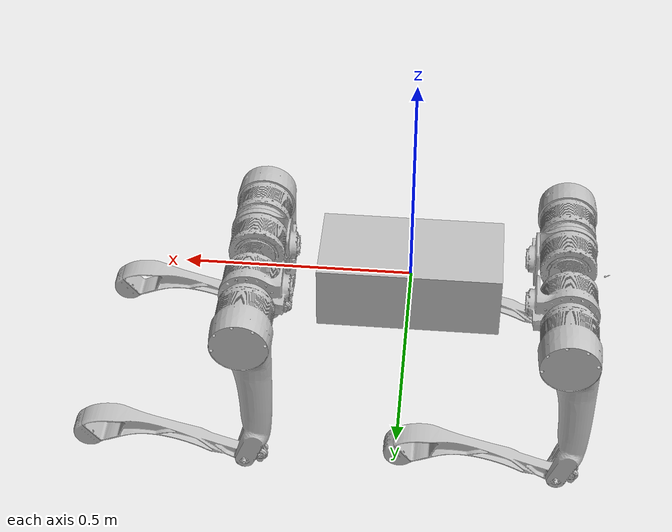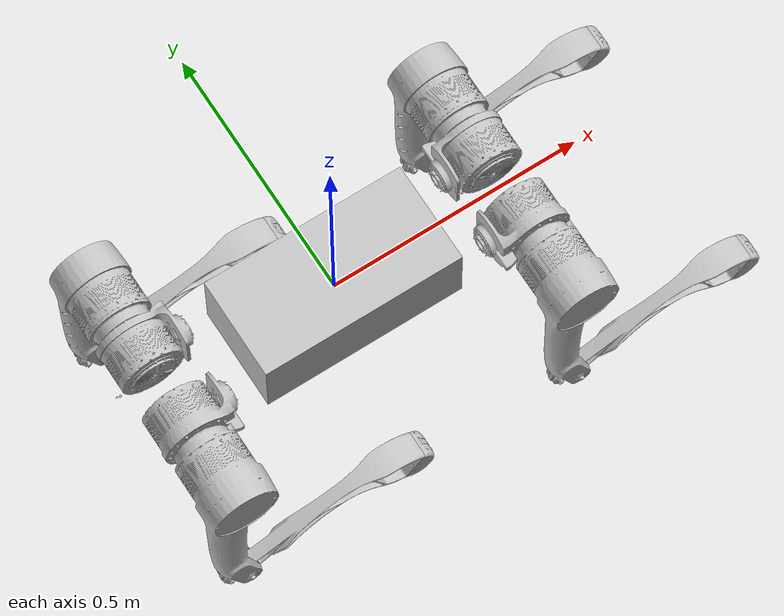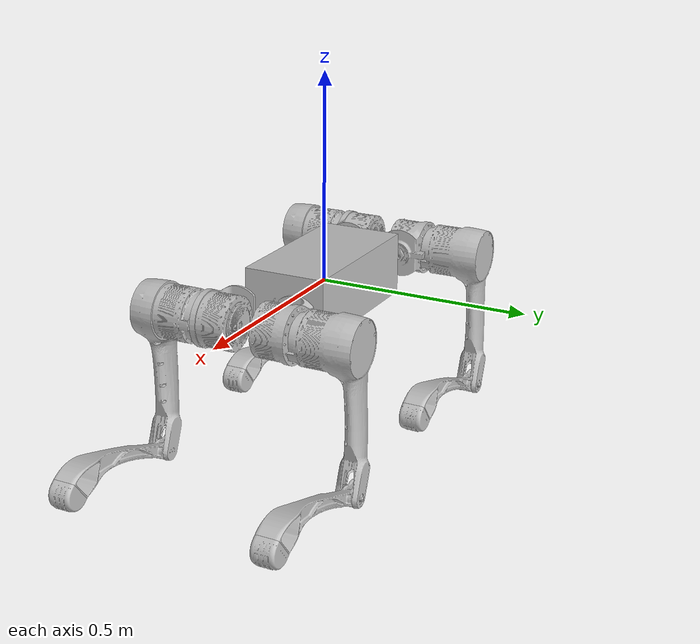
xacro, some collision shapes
<?xml version="1.0"?>

<robot xmlns:xacro="http://www.ros.org/wiki/xacro" name="lr_pro">
    <xacro:arg name="robot_type" default="lr_pro"/>
    <xacro:arg name="controller_params_file" default=""/>
    <xacro:arg name="hardware_plugin" default="lr_pro_hw/LrProHW"/>
    <xacro:arg name="power_limit" default="4"/>
    <xacro:arg name="contact_threshold" default="40"/>
    <xacro:arg name="delay" default="0.009"/>
    <xacro:arg name="enable_gazebo_control" default="false"/>

    <xacro:include filename="$(find lr_pro_description)/urdf/common/materials.xacro"/>
    <xacro:include filename="$(find lr_pro_description)/urdf/common/leg.xacro"/>
    <xacro:include filename="$(find lr_pro_description)/urdf/common/imu.xacro"/>
    <xacro:include filename="$(find lr_pro_description)/urdf/common/ros2_control.xacro"/>
    <xacro:include filename="$(find lr_pro_description)/urdf/common/gazebo.xacro"/>
    <xacro:include filename="$(find lr_pro_description)/urdf/lr_pro/const.xacro"/>

    <xacro:property name="mesh_path" value="file://$(find lr_pro_description)/meshes"/>

    <link name="base">
        <visual>
            <origin xyz="0 0 0" rpy="0 0 0"/>
            <geometry>
                <mesh filename="${mesh_path}/base_link.STL"/>
            </geometry>
            <material name="silver"/>
        </visual>
        <collision>
            <origin xyz="0 0 0" rpy="0 0 0"/>
            <geometry>
                <box size="${trunk_length} ${trunk_width} ${trunk_height}"/>
            </geometry>
        </collision>
        <inertial>
            <origin xyz="${trunk_com_x} ${trunk_com_y} ${trunk_com_z}" rpy="0 0 0"/>
            <mass value="${trunk_mass}"/>
            <inertia
                    ixx="${trunk_ixx}" ixy="${trunk_ixy}" ixz="${trunk_ixz}"
                    iyy="${trunk_iyy}" iyz="${trunk_iyz}"
                    izz="${trunk_izz}"/>
        </inertial>
    </link>

    <xacro:IMU connected_to="base" imu_name="base_imu" xyz="${imu_x} ${imu_y} ${imu_z}" rpy="0 0 0"/>

    <xacro:lr_pro_leg prefix="LF" mesh_path="${mesh_path}" mesh_prefix="FL" front_hind="1" side="1"/>
    <xacro:lr_pro_leg prefix="LH" mesh_path="${mesh_path}" mesh_prefix="RL" front_hind="-1" side="1"/>
    <xacro:lr_pro_leg prefix="RF" mesh_path="${mesh_path}" mesh_prefix="FR" front_hind="1" side="-1"/>
    <xacro:lr_pro_leg prefix="RH" mesh_path="${mesh_path}" mesh_prefix="RR" front_hind="-1" side="-1"/>

    <xacro:lr_pro_ros2_control hardware_plugin="$(arg hardware_plugin)"
                                robot_type="$(arg robot_type)"
                                power_limit="$(arg power_limit)"
                                contact_threshold="$(arg contact_threshold)"
                                delay="$(arg delay)"/>
</robot>

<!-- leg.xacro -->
<robot xmlns:xacro="http://www.ros.org/wiki/xacro">

    <!-- 引入每条腿三个驱动关节的 transmission 描述。 -->
    <xacro:include filename="transmission.xacro"/>

    <!--
      lr_pro 单腿模板。

      prefix: 控制器使用的腿名前缀，取值 LF/RF/LH/RH。
      mesh_prefix: 原始 mesh 文件名前缀，取值 FL/FR/RL/RR。
      front_hind: 前腿为 1，后腿为 -1，用于镜像 x 方向。
      side: 左腿为 1，右腿为 -1，用于镜像 y 方向。
    -->
    <xacro:macro name="lr_pro_leg" params="prefix mesh_path mesh_prefix front_hind side">
        <!-- 髋部 link：mesh、碰撞体和惯量都按 front_hind/side 做镜像。 -->
        <link name="${prefix}_hip">
            <inertial>
                <origin rpy="0 0 0" xyz="${hip_com_x*front_hind} ${hip_com_y*side} ${hip_com_z*front_hind*side}"/>
                <mass value="${hip_mass}"/>
                <inertia
                        ixx="${hip_ixx}" ixy="${hip_ixy*front_hind*side}" ixz="${hip_ixz*side}"
                        iyy="${hip_iyy}" iyz="${hip_iyz*front_hind}"
                        izz="${hip_izz}"/>
            </inertial>
            <visual>
                <origin rpy="0 0 0" xyz="0 0 0"/>
                <geometry>
                    <mesh filename="${mesh_path}/${mesh_prefix}_hip.STL"/>
                </geometry>
                <material name="silver">
                    <color rgba="0.75294 0.75294 0.75294 1"/>
                </material>
            </visual>
            <collision>
                <origin rpy="0 0 0" xyz="0 0 0"/>
                <geometry>
                    <mesh filename="${mesh_path}/${mesh_prefix}_hip.STL"/>
                </geometry>
            </collision>
        </link>

        <!-- HAA 髋外展关节：连接 base 和 hip。 -->
        <joint name="${prefix}_HAA" type="revolute">
            <origin rpy="0 0 0" xyz="${leg_offset_x*front_hind} ${leg_offset_y*side} 0"/>
            <parent link="base"/>
            <child link="${prefix}_hip"/>
            <axis xyz="1 0 0"/>
            <dynamics damping="${damping}" friction="${friction}"/>
            <limit lower="${hip_position_min}" upper="${hip_position_max}" effort="${hip_torque_max}" velocity="${hip_velocity_max}"/>
        </joint>

        <!-- Gazebo 物理模型的初始 HAA 角，避免仿真从零关节姿态掉落。 -->
        <gazebo reference="${prefix}_HAA">
            <initial_position>0.00</initial_position>
        </gazebo>

        <!-- 大腿 link：左右腿通过 side 镜像 y 方向的质心和惯量耦合项。 -->
        <link name="${prefix}_thigh">
            <inertial>
                <origin rpy="0 0 0" xyz="${thigh_com_x} ${thigh_com_y*side} ${thigh_com_z}"/>
                <mass value="${thigh_mass}"/>
                <inertia
                        ixx="${thigh_ixx}" ixy="${thigh_ixy*side}" ixz="${thigh_ixz}"
                        iyy="${thigh_iyy}" iyz="${thigh_iyz*side}"
                        izz="${thigh_izz}"/>
            </inertial>
            <visual>
                <origin rpy="0 0 0" xyz="0 0 0"/>
                <geometry>
                    <mesh filename="${mesh_path}/${mesh_prefix}_thigh.STL"/>
                </geometry>
                <material name="silver">
                    <color rgba="0.75294 0.75294 0.75294 1"/>
                </material>
            </visual>
            <collision>
                <origin rpy="0 0 0" xyz="0 0 0"/>
                <geometry>
                    <mesh filename="${mesh_path}/${mesh_prefix}_thigh.STL"/>
                </geometry>
            </collision>
        </link>

        <!-- HFE 髋俯仰关节：lr_pro 这里同时包含 x/y 偏移。 -->
        <joint name="${prefix}_HFE" type="revolute">
            <origin rpy="0 0 0" xyz="${hip_offset_x*front_hind} ${hip_offset*side} 0"/>
            <parent link="${prefix}_hip"/>
            <child link="${prefix}_thigh"/>
            <axis xyz="0 1 0"/>
            <dynamics damping="${damping}" friction="${friction}"/>
            <limit lower="${thigh_position_min}" upper="${thigh_position_max}" effort="${thigh_torque_max}" velocity="${thigh_velocity_max}"/>
        </joint>

        <!-- Gazebo 物理模型的初始 HFE 角，和 controller 默认站姿保持一致。 -->
        <gazebo reference="${prefix}_HFE">
            <initial_position>0.62</initial_position>
        </gazebo>

        <!-- 小腿 link：使用 lr_pro 原始 URDF 中的小腿惯量和 mesh。 -->
        <link name="${prefix}_calf">
            <inertial>
                <origin rpy="0 0 0" xyz="${calf_com_x} ${calf_com_y} ${calf_com_z}"/>
                <mass value="${calf_mass}"/>
                <inertia
                        ixx="${calf_ixx}" ixy="${calf_ixy}" ixz="${calf_ixz}"
                        iyy="${calf_iyy}" iyz="${calf_iyz}"
                        izz="${calf_izz}"/>
            </inertial>
            <visual>
                <origin rpy="0 0 0" xyz="0 0 0"/>
                <geometry>
                    <mesh filename="${mesh_path}/${mesh_prefix}_calf.STL"/>
                </geometry>
                <material name="silver">
                    <color rgba="0.75294 0.75294 0.75294 1"/>
                </material>
            </visual>
            <collision>
                <origin rpy="0 0 0" xyz="0 0 0"/>
                <geometry>
                    <mesh filename="${mesh_path}/${mesh_prefix}_calf.STL"/>
                </geometry>
            </collision>
        </link>

        <!-- KFE 膝关节：y 偏移按左右腿镜像，z 偏移为大腿长度。 -->
        <joint name="${prefix}_KFE" type="revolute">
            <origin rpy="0 0 0" xyz="0 ${thigh_offset*side} ${-thigh_length}"/>
            <parent link="${prefix}_thigh"/>
            <child link="${prefix}_calf"/>
            <axis xyz="0 1 0"/>
            <dynamics damping="${damping}" friction="${friction}"/>
            <limit lower="${calf_position_min}" upper="${calf_position_max}" effort="${calf_torque_max}" velocity="${calf_velocity_max}"/>
        </joint>

        <!-- Gazebo 物理模型的初始 KFE 角，和 controller 默认站姿保持一致。 -->
        <gazebo reference="${prefix}_KFE">
            <initial_position>-1.44</initial_position>
        </gazebo>

        <!-- 足端 link)：保留 mesh 可视化，碰撞体使用球体便于接触仿真。 -->
        <link name="${prefix}_FOOT">
            <inertial>
                <origin rpy="0 0 0" xyz="${foot_com_x} ${foot_com_y} ${foot_com_z}"/>
                <mass value="${foot_mass}"/>
                <inertia
                        ixx="${foot_ixx}" ixy="${foot_ixy}" ixz="${foot_ixz}"
                        iyy="${foot_iyy}" iyz="${foot_iyz}"
                        izz="${foot_izz}"/>
            </inertial>
            <visual>
                <origin rpy="0 0 0" xyz="0 0 0"/>
                <geometry>
                    <mesh filename="${mesh_path}/${mesh_prefix}_foot.STL"/>
                </geometry>
                <material name="silver">
                    <color rgba="0.75294 0.75294 0.75294 1"/>
                </material>
            </visual>
            <collision>
                <origin rpy="0 0 0" xyz="0 0 0"/>
                <geometry>
                    <sphere radius="${foot_radius}"/>
                </geometry>
            </collision>
        </link>

        <!-- 足端固定关节：连接 calf 和 FOOT，用于接触 frame。 -->
        <joint name="${prefix}_foot_fixed" type="fixed" dont_collapse="true">
            <origin rpy="0 0 0" xyz="0 0 ${-calf_length}"/>
            <parent link="${prefix}_calf"/>
            <child link="${prefix}_FOOT"/>
        </joint>

        <!-- Gazebo 接触/摩擦参数，和 Unitree 模板保持相同风格。 -->
        <gazebo reference="${prefix}_foot_fixed">
            <disableFixedJointLumping>true</disableFixedJointLumping>
        </gazebo>
        <gazebo reference="${prefix}_hip">
            <mu1>0.2</mu1>
            <mu2>0.2</mu2>
            <material>Gazebo/DarkGrey</material>
        </gazebo>
        <gazebo reference="${prefix}_thigh">
            <mu1>0.2</mu1>
            <mu2>0.2</mu2>
            <self_collide>0</self_collide>
            <material>Gazebo/DarkGrey</material>
            <kp value="1000000.0"/>
            <kd value="100.0"/>
        </gazebo>
        <gazebo reference="${prefix}_calf">
            <mu1>0.6</mu1>
            <mu2>0.6</mu2>
            <self_collide>1</self_collide>
        </gazebo>
        <gazebo reference="${prefix}_FOOT">
            <mu1>0.6</mu1>
            <mu2>0.6</mu2>
            <self_collide>1</self_collide>
            <material>Gazebo/DarkGrey</material>
            <kp value="1000000.0"/>
            <kd value="100.0"/>
        </gazebo>
        <!-- 为本条腿生成 HAA/HFE/KFE 三个 transmission。 -->
        <xacro:lr_pro_leg_transmission prefix="${prefix}"/>
    </xacro:macro>
</robot>

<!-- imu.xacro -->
<robot xmlns:xacro="http://www.ros.org/wiki/xacro" name="imu">
    <xacro:macro name="IMU" params="connected_to imu_name xyz:='0 0 0' rpy:='0 0 0' ">
        <!-- IMU 通过固定关节安装到指定父 link，lr_pro 控制器默认使用 base_imu。 -->
        <joint name="${imu_name}_joint" type="fixed">
            <origin xyz="${xyz}" rpy="${rpy}"/>
            <parent link="${connected_to}"/>
            <child link="${imu_name}"/>
        </joint>
        <!-- IMU link，只提供轻量惯量和可视化几何，真实状态由 ros2_control/仿真插件发布。 -->
        <link name="${imu_name}">
            <inertial>
                <mass value="0.01"/>
                <origin rpy="0 0 0" xyz="0 0 0"/>
                <inertia ixx="0.000001" ixy="0" ixz="0" iyy="0.000001" iyz="0" izz="0.000001"/>
            </inertial>
            <visual>
                <origin rpy="0 0 0" xyz="0 0 0"/>
                <geometry>
                    <box size="0.015 0.015 0.004"/>
                </geometry>
            </visual>
            <material name="orange">
                <color rgba="255 108 10 255"/>
            </material>
        </link>
        <!-- Gazebo 中给 IMU link 设置显示材质。 -->
        <gazebo reference="${imu_name}">
            <material>Gazebo/Orange</material>
        </gazebo>
        <!-- 禁止 Gazebo 合并 IMU 固定关节，保留独立的 IMU frame。 -->
        <gazebo reference="${imu_name}_joint">
            <disableFixedJointLumping>true</disableFixedJointLumping>
        </gazebo>
    </xacro:macro>
</robot>

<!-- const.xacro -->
<robot xmlns:xacro="http://www.ros.org/wiki/xacro" name="lr_pro_description">

    <!-- Constants for robot dimensions -->
    <xacro:property name="stick_mass" value="0.00001"/>

    <!-- simplified collision value: from base_link box size="0.4 0.2 0.15" -->
    <xacro:property name="trunk_length" value="0.4"/>
    <xacro:property name="trunk_width" value="0.2"/>
    <xacro:property name="trunk_height" value="0.15"/>

    <!-- These are kept for compatibility with A1-style macros.
         lr_pro uses mesh collision for hip/thigh/calf, so these are fallback values. -->
    <xacro:property name="hip_radius" value="0.046"/>
    <xacro:property name="hip_length" value="0.04"/>
    <xacro:property name="thigh_shoulder_radius" value="0.041"/>
    <xacro:property name="thigh_shoulder_length" value="0.04"/>
    <xacro:property name="thigh_shoulder_y_offset" value="0.0"/>

    <xacro:property name="thigh_width" value="0.03"/>
    <xacro:property name="thigh_height" value="0.034"/>
    <xacro:property name="thigh_x_offset" value="0.0"/>
    <xacro:property name="calf_width" value="0.016"/>
    <xacro:property name="calf_height" value="0.016"/>
    <xacro:property name="calf_x_offset" value="0.0"/>

    <!-- from foot collision sphere radius="0.042" -->
    <xacro:property name="foot_radius" value="0.042"/>

    <!-- kinematic value -->
    <!-- from FL/RL calf joint origin xyz="0 0.1323 -0.35" -->
    <xacro:property name="thigh_offset" value="0.1323"/>
    <xacro:property name="thigh_length" value="0.35"/>

    <!-- from foot_fixed origin xyz="0 0 -0.35" -->
    <xacro:property name="calf_length" value="0.35"/>

    <!-- leg offset from trunk center value -->
    <!-- from FL/FR/RL/RR hip joint origin xyz="+-0.259 +-0.072 0" -->
    <xacro:property name="leg_offset_x" value="0.259"/>
    <xacro:property name="leg_offset_y" value="0.072"/>
    <xacro:property name="trunk_offset_z" value="0.0"/>

    <!-- from thigh joint origin xyz="+-0.089 +-0.0395 0" -->
    <xacro:property name="hip_offset_x" value="0.089"/>
    <xacro:property name="hip_offset" value="0.0395"/>

    <!-- joint limits -->
    <xacro:property name="damping" value="0"/>
    <xacro:property name="friction" value="0"/>

    <!-- HAA / hip joint: lower="-0.698" upper="0.698" effort="220" velocity="12" -->
    <xacro:property name="hip_position_max" value="0.698"/>
    <xacro:property name="hip_position_min" value="-0.698"/>
    <xacro:property name="hip_velocity_max" value="12"/>
    <xacro:property name="hip_torque_max" value="220"/>

    <!-- HFE / thigh joint: lower="-2.840" upper="2.840" effort="220" velocity="12" -->
    <xacro:property name="thigh_position_max" value="2.840"/>
    <xacro:property name="thigh_position_min" value="-2.840"/>
    <xacro:property name="thigh_velocity_max" value="12"/>
    <xacro:property name="thigh_torque_max" value="220"/>

    <!-- KFE / calf joint: lower="-2.76634" upper="-0.68067" effort="280" velocity="12" -->
    <xacro:property name="calf_position_max" value="-0.68067"/>
    <xacro:property name="calf_position_min" value="-2.76634"/>
    <xacro:property name="calf_velocity_max" value="12"/>
    <xacro:property name="calf_torque_max" value="280"/>

    <!-- dynamics inertial value -->
    <!-- trunk / base_link -->
    <xacro:property name="trunk_mass" value="41.55318666"/>
    <xacro:property name="trunk_com_x" value="0.0036196"/>
    <xacro:property name="trunk_com_y" value="0.0020766"/>
    <xacro:property name="trunk_com_z" value="0.014291"/>
    <xacro:property name="trunk_ixx" value="0.36609753"/>
    <xacro:property name="trunk_ixy" value="-0.00244571"/>
    <xacro:property name="trunk_ixz" value="-0.06601466"/>
    <xacro:property name="trunk_iyy" value="1.65137460"/>
    <xacro:property name="trunk_iyz" value="0.00028196"/>
    <xacro:property name="trunk_izz" value="1.78840665"/>

    <!-- hip: using FL_hip as template -->
    <xacro:property name="hip_mass" value="3.14861814"/>
    <xacro:property name="hip_com_x" value="0.059894"/>
    <xacro:property name="hip_com_y" value="0.012203"/>
    <xacro:property name="hip_com_z" value="-0.00002491"/>
    <xacro:property name="hip_ixx" value="0.00150762"/>
    <xacro:property name="hip_ixy" value="0.00003652"/>
    <xacro:property name="hip_ixz" value="0.00000078"/>
    <xacro:property name="hip_iyy" value="0.00308821"/>
    <xacro:property name="hip_iyz" value="-0.00000116"/>
    <xacro:property name="hip_izz" value="0.00282044"/>

    <!-- thigh: using FL_thigh as template -->
    <xacro:property name="thigh_mass" value="4.62267861"/>
    <xacro:property name="thigh_com_x" value="-0.0095977"/>
    <xacro:property name="thigh_com_y" value="0.11103"/>
    <xacro:property name="thigh_com_z" value="-0.088387"/>
    <xacro:property name="thigh_ixx" value="0.05234465"/>
    <xacro:property name="thigh_ixy" value="0.00083785"/>
    <xacro:property name="thigh_ixz" value="-0.00317648"/>
    <xacro:property name="thigh_iyy" value="0.04965056"/>
    <xacro:property name="thigh_iyz" value="0.00756963"/>
    <xacro:property name="thigh_izz" value="0.00794928"/>

    <!-- calf -->
    <xacro:property name="calf_mass" value="0.65024748"/>
    <xacro:property name="calf_com_x" value="0.02051"/>
    <xacro:property name="calf_com_y" value="0.0000082897"/>
    <xacro:property name="calf_com_z" value="-0.17043"/>
    <xacro:property name="calf_ixx" value="0.01003897"/>
    <xacro:property name="calf_ixy" value="0.00000002"/>
    <xacro:property name="calf_ixz" value="0.00071564"/>
    <xacro:property name="calf_iyy" value="0.01022625"/>
    <xacro:property name="calf_iyz" value="-0.00000074"/>
    <xacro:property name="calf_izz" value="0.00032368"/>

    <!-- foot -->
    <xacro:property name="foot_mass" value="0.17599179"/>
    <xacro:property name="foot_com_x" value="-0.0068215"/>
    <xacro:property name="foot_com_y" value="0.000000051068"/>
    <xacro:property name="foot_com_z" value="-0.0064099"/>
    <xacro:property name="foot_ixx" value="0.00011789"/>
    <xacro:property name="foot_ixy" value="0.0"/>
    <xacro:property name="foot_ixz" value="0.00002693"/>
    <xacro:property name="foot_iyy" value="0.00011149"/>
    <xacro:property name="foot_iyz" value="0.0"/>
    <xacro:property name="foot_izz" value="0.00011428"/>

    <!-- sensor extrinsic parameters -->
    <xacro:property name="imu_x" value="0.0334"/>
    <xacro:property name="imu_y" value="-0.0172765"/>
    <xacro:property name="imu_z" value="0.0510469"/>

    <xacro:property name="camera_x" value="0.46"/>
    <xacro:property name="camera_y" value="0.0"/>
    <xacro:property name="camera_z" value="0.02"/>

    <xacro:property name="livox_x" value="0.0"/>
    <xacro:property name="livox_y" value="0.0"/>
    <xacro:property name="livox_z" value="0.1"/>

    <xacro:property name="livox2_x" value="0.5"/>
    <xacro:property name="livox2_y" value="0.0"/>
    <xacro:property name="livox2_z" value="0.1"/>
    <xacro:property name="livox2_pitch" value="0.2618"/>

    <xacro:property name="lidar_x" value="0.5"/>
    <xacro:property name="lidar_y" value="0.0"/>
    <xacro:property name="lidar_z" value="-0.033"/>
    <xacro:property name="lidar_roll" value="3.14"/>
    <xacro:property name="lidar_pitch" value="0.349"/>
    <xacro:property name="lidar_yaw" value="0.0"/>

</robot>
